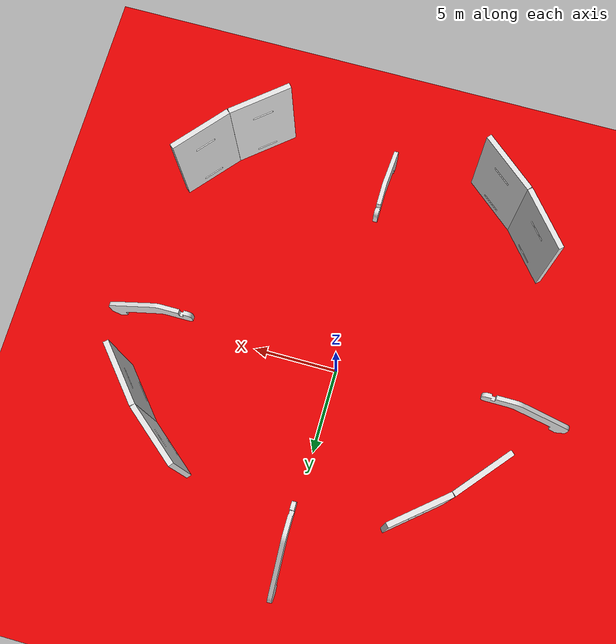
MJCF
<mujoco>
    <asset>
		<mesh file="STL_files/p_leg.STL"/>
		<mesh file="STL_files/p_leg_frame_segment_extension-1.STL"/>
		<mesh file="STL_files/p_leg_frame_segment_extension-2.STL"/>
	</asset>

    <default>
		<geom density="0.002"/>
	</default>

	<option gravity="0 0 -9.810"/>

	<worldbody>
		<light diffuse="1 1 1" pos="0 0 1000" dir="0 0 -1"/>
		<geom type="plane" size="1000 1000 0.1" rgba=".9 0 0 1"/>
		<camera name="closeup" pos="55.989 33.954 23.285" xyaxes="-0.462 0.887 -0.000 -0.252 -0.131 0.959"/>

		<body pos="-6.985 0.254 0" euler ="90 0 0" name = "p_leg_frame_segment_extension-1_1" >

			<inertial pos="7.144 11.681 7.62" mass="0.24"/>
			<geom type="mesh" mesh="p_leg_frame_segment_extension-1" rgba="0.9 0.9 0.9 1"/>
			<joint type= "free"/>

			<body pos="0 0 0" euler ="0 0 0" name="leg_ef_1" >
				<geom type="mesh" mesh="p_leg" rgba="0.9 0.9 0.9 1"/>
				<joint axis="1 0 0" pos = "6.985 4.047 9.106" range = "-5 5" name= "lift_1"/>
				<joint axis="0 0 1" pos = "6.985 4.047 9.106" range = "-5 5" name= "swing_1"/>
			</body>

			<body pos="0 0 0" euler ="0 0 0" name="p_leg_frame_segment_extension-2_1" >
				<geom type="mesh" mesh="p_leg_frame_segment_extension-2" rgba="0.9 0.9 0.9 1"/>
			</body>

		</body>

		<body pos="-0.254 -6.985 0" euler ="90 90 0" name = "p_leg_frame_segment_extension-1_2" >

			<inertial pos="7.144 11.681 7.62" mass="0.24"/>
			<geom type="mesh" mesh="p_leg_frame_segment_extension-1" rgba="0.9 0.9 0.9 1"/>
			<joint type= "free"/>

			<body pos="0 0 0" euler ="0 0 0" name="leg_ef_2" >
				<geom type="mesh" mesh="p_leg" rgba="0.9 0.9 0.9 1"/>
				<joint axis="1 0 0" pos = "6.985 4.047 9.106" range = "-5 5" name= "lift_2"/>
				<joint axis="0 0 1" pos = "6.985 4.047 9.106" range = "-5 5" name= "swing_2"/>
			</body>

			<body pos="0 0 0" euler ="0 0 0" name="p_leg_frame_segment_extension-2_2" >
				<geom type="mesh" mesh="p_leg_frame_segment_extension-2" rgba="0.9 0.9 0.9 1"/>
			</body>

		</body>

		<body pos="6.985 -0.254 0" euler ="90 180 0" name = "p_leg_frame_segment_extension-1_3" >

			<inertial pos="7.144 11.681 7.62" mass="0.24"/>
			<geom type="mesh" mesh="p_leg_frame_segment_extension-1" rgba="0.9 0.9 0.9 1"/>
			<joint type= "free"/>

			<body pos="0 0 0" euler ="0 0 0" name="leg_ef_3" >
				<geom type="mesh" mesh="p_leg" rgba="0.9 0.9 0.9 1"/>
				<joint axis="1 0 0" pos = "6.985 4.047 9.106" range = "-5 5" name= "lift_3"/>
				<joint axis="0 0 1" pos = "6.985 4.047 9.106" range = "-5 5" name= "swing_3"/>
			</body>

			<body pos="0 0 0" euler ="0 0 0" name="p_leg_frame_segment_extension-2_3" >
				<geom type="mesh" mesh="p_leg_frame_segment_extension-2" rgba="0.9 0.9 0.9 1"/>
			</body>

		</body>

		<body pos="0.254 6.985 0" euler ="90 270 0" name = "p_leg_frame_segment_extension-1_4" >

			<inertial pos="7.144 11.681 7.62" mass="0.24"/>
			<geom type="mesh" mesh="p_leg_frame_segment_extension-1" rgba="0.9 0.9 0.9 1"/>
			<joint type= "free"/>

			<body pos="0 0 0" euler ="0 0 0" name="leg_ef_4" >
				<geom type="mesh" mesh="p_leg" rgba="0.9 0.9 0.9 1"/>
				<joint axis="1 0 0" pos = "6.985 4.047 9.106" range = "-5 5" name= "lift_4"/>
				<joint axis="0 0 1" pos = "6.985 4.047 9.106" range = "-5 5" name= "swing_4"/>
			</body>

			<body pos="0 0 0" euler ="0 0 0" name="p_leg_frame_segment_extension-2_4" >
				<geom type="mesh" mesh="p_leg_frame_segment_extension-2" rgba="0.9 0.9 0.9 1"/>
			</body>

		</body>

	</worldbody>

    <!-- equalities-->

    <equality>

		<!-- interleg-->
		<connect name="joint_1_1" body1="p_leg_frame_segment_extension-1_1" body2="p_leg_frame_segment_extension-2_4" anchor=" 0.184 16.021 7.05 "/>
		<connect name="joint_1_2" body1="p_leg_frame_segment_extension-1_1" body2="p_leg_frame_segment_extension-2_4" anchor=" 0.184 11.021 7.05 "/>
		<connect name="joint_2_1" body1="p_leg_frame_segment_extension-1_4" body2="p_leg_frame_segment_extension-2_3" anchor=" 0.184 16.021 7.05 "/>
		<connect name="joint_2_2" body1="p_leg_frame_segment_extension-1_4" body2="p_leg_frame_segment_extension-2_3" anchor=" 0.184 11.021 7.05 "/>
		<connect name="joint_3_1" body1="p_leg_frame_segment_extension-1_3" body2="p_leg_frame_segment_extension-2_2" anchor=" 0.184 16.021 7.05 "/>
		<connect name="joint_3_2" body1="p_leg_frame_segment_extension-1_3" body2="p_leg_frame_segment_extension-2_2" anchor=" 0.184 11.021 7.05 "/>
		<connect name="joint_4_1" body1="p_leg_frame_segment_extension-1_2" body2="p_leg_frame_segment_extension-2_1" anchor=" 0.184 16.021 7.05 "/>
		<connect name="joint_4_2" body1="p_leg_frame_segment_extension-1_2" body2="p_leg_frame_segment_extension-2_1" anchor=" 0.184 11.021 7.05 "/>

	</equality>

	<!-- actuators -->

	<actuator>
		<motor ctrllimited="true" ctrlrange="-1.0 1.0" name="lift_1" joint="lift_1" gear="150.0" />
		<motor ctrllimited="true" ctrlrange="-1.0 1.0" name="swing_1" joint="swing_1" gear="150.0" />
		<motor ctrllimited="true" ctrlrange="-1.0 1.0" name="lift_2" joint="lift_2" gear="150.0" />
		<motor ctrllimited="true" ctrlrange="-1.0 1.0" name="swing_2" joint="swing_2" gear="150.0" />
		<motor ctrllimited="true" ctrlrange="-1.0 1.0" name="lift_3" joint="lift_3" gear="150.0" />
		<motor ctrllimited="true" ctrlrange="-1.0 1.0" name="swing_3" joint="swing_3" gear="150.0" />
		<motor ctrllimited="true" ctrlrange="-1.0 1.0" name="lift_4" joint="lift_4" gear="150.0" />
		<motor ctrllimited="true" ctrlrange="-1.0 1.0" name="swing_4" joint="swing_4" gear="150.0" />
	</actuator>

</mujoco>
